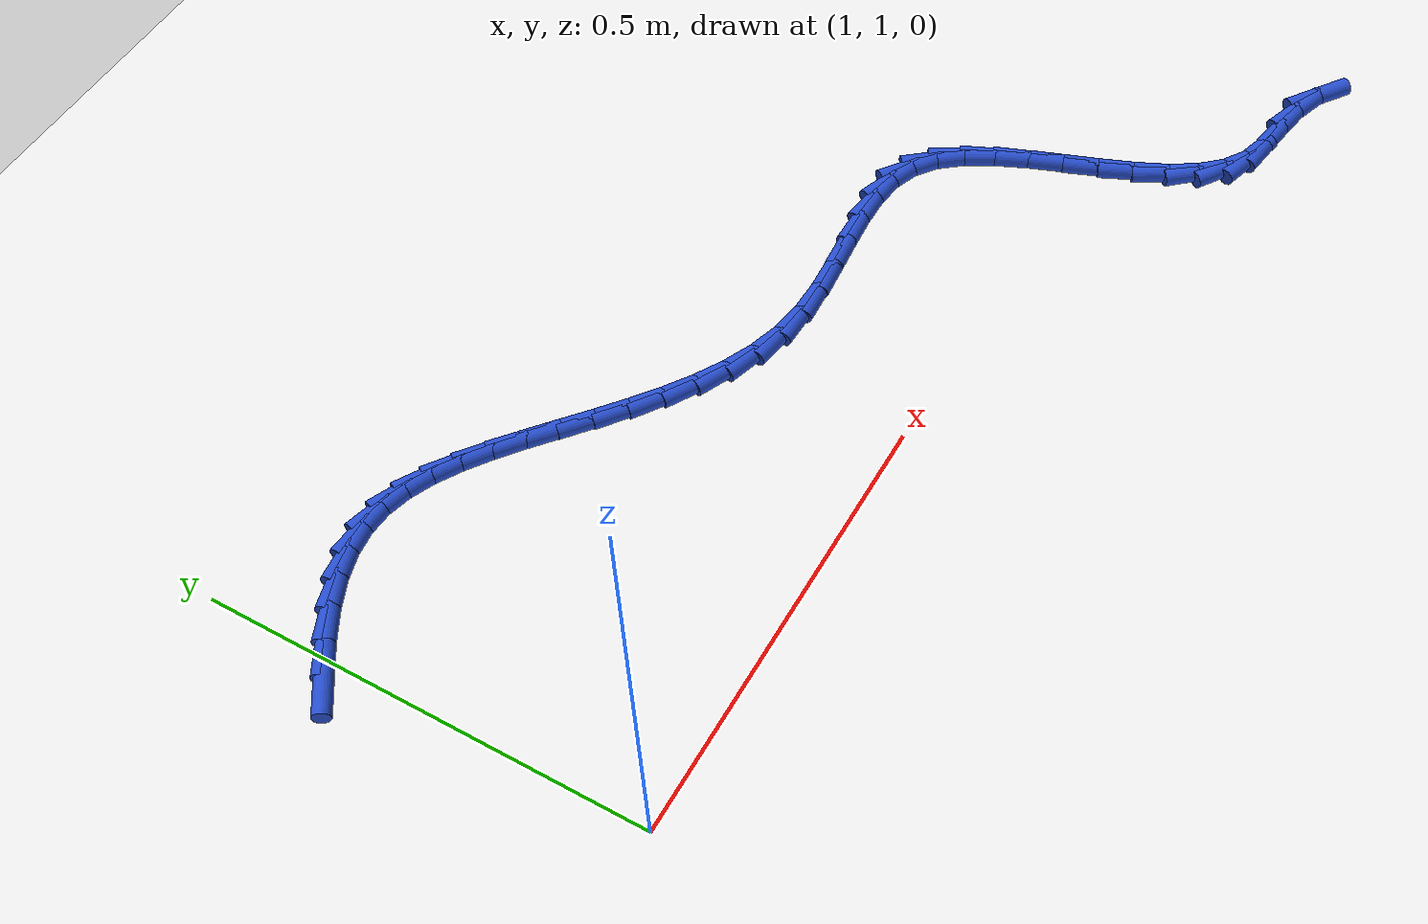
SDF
<sdf version="1.6">
 <world name="default">
  <model name="ground_plane">
   <static>1</static>
   <link name="link">
    <collision name="collision">
     <geometry><plane><normal>0 0 1</normal><size>100 100</size></plane></geometry>
     <surface><friction><ode><mu>100</mu><mu2>50</mu2></ode></friction></surface>
    </collision>
    <visual name="visual">
     <cast_shadows>0</cast_shadows>
     <geometry><plane><normal>0 0 1</normal><size>100 100</size></plane></geometry>
     <material>
      <script><uri>file://media/materials/scripts/gazebo.material</uri><name>Gazebo/WhiteGlow</name></script>
     </material>
    </visual>
   </link>
  </model>
  <model name="line">
   <link name="link_56">
    <pose>0.9785659658392218 1.3477558384027826 0.01 0 1.57 0.5901309701207232</pose>
    <collision name="collision">
     <geometry><cylinder><radius>0.01</radius><length>0.08</length></cylinder></geometry>
    </collision>
    <visual name="visual">
     <material>
      <script><name>Gazebo/Blue</name><uri>file://media/materials/scripts/gazebo.material</uri></script>
     </material>
     <geometry><cylinder><radius>0.01</radius><length>0.08</length></cylinder></geometry>
    </visual>
   </link>
   <link name="link_57">
    <pose>1.0130214481804625 1.3708322373781336 0.01 0 1.57 0.516005729338417</pose>
    <collision name="collision">
     <geometry><cylinder><radius>0.01</radius><length>0.08</length></cylinder></geometry>
    </collision>
    <visual name="visual">
     <material>
      <script><name>Gazebo/Blue</name><uri>file://media/materials/scripts/gazebo.material</uri></script>
     </material>
     <geometry><cylinder><radius>0.01</radius><length>0.08</length></cylinder></geometry>
    </visual>
   </link>
   <link name="link_58">
    <pose>1.04570241990977 1.389371178853719 0.01 0 1.57 0.4158831471761494</pose>
    <collision name="collision">
     <geometry><cylinder><radius>0.01</radius><length>0.08</length></cylinder></geometry>
    </collision>
    <visual name="visual">
     <material>
      <script><name>Gazebo/Blue</name><uri>file://media/materials/scripts/gazebo.material</uri></script>
     </material>
     <geometry><cylinder><radius>0.01</radius><length>0.08</length></cylinder></geometry>
    </visual>
   </link>
   <link name="link_59">
    <pose>1.0768770058433084 1.4031392388105606 0.01 0 1.57 0.2847889965357436</pose>
    <collision name="collision">
     <geometry><cylinder><radius>0.01</radius><length>0.08</length></cylinder></geometry>
    </collision>
    <visual name="visual">
     <material>
      <script><name>Gazebo/Blue</name><uri>file://media/materials/scripts/gazebo.material</uri></script>
     </material>
     <geometry><cylinder><radius>0.01</radius><length>0.08</length></cylinder></geometry>
    </visual>
   </link>
   <link name="link_60">
    <pose>1.1068133307972405 1.4119029932296776 0.01 0 1.57 0.12113302033196666</pose>
    <collision name="collision">
     <geometry><cylinder><radius>0.01</radius><length>0.08</length></cylinder></geometry>
    </collision>
    <visual name="visual">
     <material>
      <script><name>Gazebo/Blue</name><uri>file://media/materials/scripts/gazebo.material</uri></script>
     </material>
     <geometry><cylinder><radius>0.01</radius><length>0.08</length></cylinder></geometry>
    </visual>
   </link>
   <link name="link_61">
    <pose>1.1357795195877296 1.4154290180920903 0.01 0 1.57 -0.0687112376503828</pose>
    <collision name="collision">
     <geometry><cylinder><radius>0.01</radius><length>0.08</length></cylinder></geometry>
    </collision>
    <visual name="visual">
     <material>
      <script><name>Gazebo/Blue</name><uri>file://media/materials/scripts/gazebo.material</uri></script>
     </material>
     <geometry><cylinder><radius>0.01</radius><length>0.08</length></cylinder></geometry>
    </visual>
   </link>
   <link name="link_62">
    <pose>1.1640436970309391 1.4134838893788197 0.01 0 1.57 -0.2630722630723486</pose>
    <collision name="collision">
     <geometry><cylinder><radius>0.01</radius><length>0.08</length></cylinder></geometry>
    </collision>
    <visual name="visual">
     <material>
      <script><name>Gazebo/Blue</name><uri>file://media/materials/scripts/gazebo.material</uri></script>
     </material>
     <geometry><cylinder><radius>0.01</radius><length>0.08</length></cylinder></geometry>
    </visual>
   </link>
   <link name="link_63">
    <pose>1.1918568202912345 1.405993428063927 0.01 0 1.57 -0.423040959716247</pose>
    <collision name="collision">
     <geometry><cylinder><radius>0.01</radius><length>0.08</length></cylinder></geometry>
    </collision>
    <visual name="visual">
     <material>
      <script><name>Gazebo/Blue</name><uri>file://media/materials/scripts/gazebo.material</uri></script>
     </material>
     <geometry><cylinder><radius>0.01</radius><length>0.08</length></cylinder></geometry>
    </visual>
   </link>
   <link name="link_64">
    <pose>1.2193930363021441 1.3935959372255833 0.01 0 1.57 -0.5409516922680203</pose>
    <collision name="collision">
     <geometry><cylinder><radius>0.01</radius><length>0.08</length></cylinder></geometry>
    </collision>
    <visual name="visual">
     <material>
      <script><name>Gazebo/Blue</name><uri>file://media/materials/scripts/gazebo.material</uri></script>
     </material>
     <geometry><cylinder><radius>0.01</radius><length>0.08</length></cylinder></geometry>
    </visual>
   </link>
   <link name="link_65">
    <pose>1.246805018975649 1.3771289010068557 0.01 0 1.57 -0.6226292388037207</pose>
    <collision name="collision">
     <geometry><cylinder><radius>0.01</radius><length>0.08</length></cylinder></geometry>
    </collision>
    <visual name="visual">
     <material>
      <script><name>Gazebo/Blue</name><uri>file://media/materials/scripts/gazebo.material</uri></script>
     </material>
     <geometry><cylinder><radius>0.01</radius><length>0.08</length></cylinder></geometry>
    </visual>
   </link>
   <link name="link_66">
    <pose>1.2742454412244615 1.3574298128199085 0.01 0 1.57 -0.6746618842336378</pose>
    <collision name="collision">
     <geometry><cylinder><radius>0.01</radius><length>0.08</length></cylinder></geometry>
    </collision>
    <visual name="visual">
     <material>
      <script><name>Gazebo/Blue</name><uri>file://media/materials/scripts/gazebo.material</uri></script>
     </material>
     <geometry><cylinder><radius>0.01</radius><length>0.08</length></cylinder></geometry>
    </visual>
   </link>
   <link name="link_67">
    <pose>1.3018669759612935 1.335336166076906 0.01 0 1.57 -0.7021779244512198</pose>
    <collision name="collision">
     <geometry><cylinder><radius>0.01</radius><length>0.08</length></cylinder></geometry>
    </collision>
    <visual name="visual">
     <material>
      <script><name>Gazebo/Blue</name><uri>file://media/materials/scripts/gazebo.material</uri></script>
     </material>
     <geometry><cylinder><radius>0.01</radius><length>0.08</length></cylinder></geometry>
    </visual>
   </link>
   <link name="link_68">
    <pose>1.3298222960988573 1.3116854541900127 0.01 0 1.57 -0.7084563243424707</pose>
    <collision name="collision">
     <geometry><cylinder><radius>0.01</radius><length>0.08</length></cylinder></geometry>
    </collision>
    <visual name="visual">
     <material>
      <script><name>Gazebo/Blue</name><uri>file://media/materials/scripts/gazebo.material</uri></script>
     </material>
     <geometry><cylinder><radius>0.01</radius><length>0.08</length></cylinder></geometry>
    </visual>
   </link>
   <link name="link_69">
    <pose>1.3582640745498646 1.2873151705713926 0.01 0 1.57 -0.6951089414579255</pose>
    <collision name="collision">
     <geometry><cylinder><radius>0.01</radius><length>0.08</length></cylinder></geometry>
    </collision>
    <visual name="visual">
     <material>
      <script><name>Gazebo/Blue</name><uri>file://media/materials/scripts/gazebo.material</uri></script>
     </material>
     <geometry><cylinder><radius>0.01</radius><length>0.08</length></cylinder></geometry>
    </visual>
   </link>
   <link name="link_70">
    <pose>1.3873449842270282 1.2630628086332099 0.01 0 1.57 -0.6623478260778334</pose>
    <collision name="collision">
     <geometry><cylinder><radius>0.01</radius><length>0.08</length></cylinder></geometry>
    </collision>
    <visual name="visual">
     <material>
      <script><name>Gazebo/Blue</name><uri>file://media/materials/scripts/gazebo.material</uri></script>
     </material>
     <geometry><cylinder><radius>0.01</radius><length>0.08</length></cylinder></geometry>
    </visual>
   </link>
   <link name="link_71">
    <pose>1.4172176980430593 1.239765861787629 0.01 0 1.57 -0.6092436188373467</pose>
    <collision name="collision">
     <geometry><cylinder><radius>0.01</radius><length>0.08</length></cylinder></geometry>
    </collision>
    <visual name="visual">
     <material>
      <script><name>Gazebo/Blue</name><uri>file://media/materials/scripts/gazebo.material</uri></script>
     </material>
     <geometry><cylinder><radius>0.01</radius><length>0.08</length></cylinder></geometry>
    </visual>
   </link>
   <link name="link_72">
    <pose>1.4480348889106707 1.2182618234468148 0.01 0 1.57 -0.534060255051369</pose>
    <collision name="collision">
     <geometry><cylinder><radius>0.01</radius><length>0.08</length></cylinder></geometry>
    </collision>
    <visual name="visual">
     <material>
      <script><name>Gazebo/Blue</name><uri>file://media/materials/scripts/gazebo.material</uri></script>
     </material>
     <geometry><cylinder><radius>0.01</radius><length>0.08</length></cylinder></geometry>
    </visual>
   </link>
   <link name="link_73">
    <pose>1.4799492297425731 1.1993881870229313 0.01 0 1.57 -0.43487096651185925</pose>
    <collision name="collision">
     <geometry><cylinder><radius>0.01</radius><length>0.08</length></cylinder></geometry>
    </collision>
    <visual name="visual">
     <material>
      <script><name>Gazebo/Blue</name><uri>file://media/materials/scripts/gazebo.material</uri></script>
     </material>
     <geometry><cylinder><radius>0.01</radius><length>0.08</length></cylinder></geometry>
    </visual>
   </link>
   <link name="link_74">
    <pose>1.5131133934514804 1.1839824459281425 0.01 0 1.57 -0.31072662127793815</pose>
    <collision name="collision">
     <geometry><cylinder><radius>0.01</radius><length>0.08</length></cylinder></geometry>
    </collision>
    <visual name="visual">
     <material>
      <script><name>Gazebo/Blue</name><uri>file://media/materials/scripts/gazebo.material</uri></script>
     </material>
     <geometry><cylinder><radius>0.01</radius><length>0.08</length></cylinder></geometry>
    </visual>
   </link>
   <link name="link_75">
    <pose>1.547680052950104 1.1728820935746134 0.01 0 1.57 -0.1639800397209921</pose>
    <collision name="collision">
     <geometry><cylinder><radius>0.01</radius><length>0.08</length></cylinder></geometry>
    </collision>
    <visual name="visual">
     <material>
      <script><name>Gazebo/Blue</name><uri>file://media/materials/scripts/gazebo.material</uri></script>
     </material>
     <geometry><cylinder><radius>0.01</radius><length>0.08</length></cylinder></geometry>
    </visual>
   </link>
   <link name="link_76">
    <pose>1.5837952432176416 1.166906264718902 0.01 0 1.57 -0.028313933177503966</pose>
    <collision name="collision">
     <geometry><cylinder><radius>0.01</radius><length>0.08</length></cylinder></geometry>
    </collision>
    <visual name="visual">
     <material>
      <script><name>Gazebo/Blue</name><uri>file://media/materials/scripts/gazebo.material</uri></script>
     </material>
     <geometry><cylinder><radius>0.01</radius><length>0.08</length></cylinder></geometry>
    </visual>
   </link>
   <link name="link_77">
    <pose>1.621233258503906 1.1658459639004104 0.01 0 1.57 0.05507332028136856</pose>
    <collision name="collision">
     <geometry><cylinder><radius>0.01</radius><length>0.08</length></cylinder></geometry>
    </collision>
    <visual name="visual">
     <material>
      <script><name>Gazebo/Blue</name><uri>file://media/materials/scripts/gazebo.material</uri></script>
     </material>
     <geometry><cylinder><radius>0.01</radius><length>0.08</length></cylinder></geometry>
    </visual>
   </link>
   <link name="link_78">
    <pose>1.6592069558794407 1.167939418458166 0.01 0 1.57 0.08885550832855044</pose>
    <collision name="collision">
     <geometry><cylinder><radius>0.01</radius><length>0.08</length></cylinder></geometry>
    </collision>
    <visual name="visual">
     <material>
      <script><name>Gazebo/Blue</name><uri>file://media/materials/scripts/gazebo.material</uri></script>
     </material>
     <geometry><cylinder><radius>0.01</radius><length>0.08</length></cylinder></geometry>
    </visual>
   </link>
   <link name="link_79">
    <pose>1.6968825816899873 1.17129594358672 0.01 0 1.57 0.0745367281255707</pose>
    <collision name="collision">
     <geometry><cylinder><radius>0.01</radius><length>0.08</length></cylinder></geometry>
    </collision>
    <visual name="visual">
     <material>
      <script><name>Gazebo/Blue</name><uri>file://media/materials/scripts/gazebo.material</uri></script>
     </material>
     <geometry><cylinder><radius>0.01</radius><length>0.08</length></cylinder></geometry>
    </visual>
   </link>
   <link name="link_80">
    <pose>1.7334263822812863 1.174024854480624 0.01 0 1.57 0.00609080626226796</pose>
    <collision name="collision">
     <geometry><cylinder><radius>0.01</radius><length>0.08</length></cylinder></geometry>
    </collision>
    <visual name="visual">
     <material>
      <script><name>Gazebo/Blue</name><uri>file://media/materials/scripts/gazebo.material</uri></script>
     </material>
     <geometry><cylinder><radius>0.01</radius><length>0.08</length></cylinder></geometry>
    </visual>
   </link>
   <link name="link_81">
    <pose>1.7680046039990778 1.1742354663344279 0.01 0 1.57 -0.13135132176207368</pose>
    <collision name="collision">
     <geometry><cylinder><radius>0.01</radius><length>0.08</length></cylinder></geometry>
    </collision>
    <visual name="visual">
     <material>
      <script><name>Gazebo/Blue</name><uri>file://media/materials/scripts/gazebo.material</uri></script>
     </material>
     <geometry><cylinder><radius>0.01</radius><length>0.08</length></cylinder></geometry>
    </visual>
   </link>
   <link name="link_82">
    <pose>1.7997834931891037 1.170037094342684 0.01 0 1.57 -0.35700536812928224</pose>
    <collision name="collision">
     <geometry><cylinder><radius>0.01</radius><length>0.08</length></cylinder></geometry>
    </collision>
    <visual name="visual">
     <material>
      <script><name>Gazebo/Blue</name><uri>file://media/materials/scripts/gazebo.material</uri></script>
     </material>
     <geometry><cylinder><radius>0.01</radius><length>0.08</length></cylinder></geometry>
    </visual>
   </link>
   <link name="link_83">
    <pose>1.8279292961971039 1.159539053699943 0.01 0 1.57 -0.6544645578361081</pose>
    <collision name="collision">
     <geometry><cylinder><radius>0.01</radius><length>0.08</length></cylinder></geometry>
    </collision>
    <visual name="visual">
     <material>
      <script><name>Gazebo/Blue</name><uri>file://media/materials/scripts/gazebo.material</uri></script>
     </material>
     <geometry><cylinder><radius>0.01</radius><length>0.08</length></cylinder></geometry>
    </visual>
   </link>
   <link name="link_84">
    <pose>1.8517938920310761 1.1412283910152847 0.01 0 1.57 -0.9021077104812166</pose>
    <collision name="collision">
     <geometry><cylinder><radius>0.01</radius><length>0.08</length></cylinder></geometry>
    </collision>
    <visual name="visual">
     <material>
      <script><name>Gazebo/Blue</name><uri>file://media/materials/scripts/gazebo.material</uri></script>
     </material>
     <geometry><cylinder><radius>0.01</radius><length>0.08</length></cylinder></geometry>
    </visual>
   </link>
   <link name="link_85">
    <pose>1.8718415023141106 1.1158555840436455 0.01 0 1.57 -1.064414160382714</pose>
    <collision name="collision">
     <geometry><cylinder><radius>0.01</radius><length>0.08</length></cylinder></geometry>
    </collision>
    <visual name="visual">
     <material>
      <script><name>Gazebo/Blue</name><uri>file://media/materials/scripts/gazebo.material</uri></script>
     </material>
     <geometry><cylinder><radius>0.01</radius><length>0.08</length></cylinder></geometry>
    </visual>
   </link>
   <link name="link_86">
    <pose>1.8889488108343069 1.085010402047899 0.01 0 1.57 -1.1619792918980352</pose>
    <collision name="collision">
     <geometry><cylinder><radius>0.01</radius><length>0.08</length></cylinder></geometry>
    </collision>
    <visual name="visual">
     <material>
      <script><name>Gazebo/Blue</name><uri>file://media/materials/scripts/gazebo.material</uri></script>
     </material>
     <geometry><cylinder><radius>0.01</radius><length>0.08</length></cylinder></geometry>
    </visual>
   </link>
   <link name="link_87">
    <pose>1.9039931776739614 1.050283990436478 0.01 0 1.57 -1.2125563082615824</pose>
    <collision name="collision">
     <geometry><cylinder><radius>0.01</radius><length>0.08</length></cylinder></geometry>
    </collision>
    <visual name="visual">
     <material>
      <script><name>Gazebo/Blue</name><uri>file://media/materials/scripts/gazebo.material</uri></script>
     </material>
     <geometry><cylinder><radius>0.01</radius><length>0.08</length></cylinder></geometry>
    </visual>
   </link>
   <link name="link_88">
    <pose>1.9178519629153687 1.0132674946178177 0.01 0 1.57 -1.2258744730973856</pose>
    <collision name="collision">
     <geometry><cylinder><radius>0.01</radius><length>0.08</length></cylinder></geometry>
    </collision>
    <visual name="visual">
     <material>
      <script><name>Gazebo/Blue</name><uri>file://media/materials/scripts/gazebo.material</uri></script>
     </material>
     <geometry><cylinder><radius>0.01</radius><length>0.08</length></cylinder></geometry>
    </visual>
   </link>
   <link name="link_89">
    <pose>1.9314025266408268 0.97555206000035 0.01 0 1.57 -1.204641989730536</pose>
    <collision name="collision">
     <geometry><cylinder><radius>0.01</radius><length>0.08</length></cylinder></geometry>
    </collision>
    <visual name="visual">
     <material>
      <script><name>Gazebo/Blue</name><uri>file://media/materials/scripts/gazebo.material</uri></script>
     </material>
     <geometry><cylinder><radius>0.01</radius><length>0.08</length></cylinder></geometry>
    </visual>
   </link>
   <link name="link_90">
    <pose>1.945522228932631 0.9387288319925094 0.01 0 1.57 -1.1452030760626033</pose>
    <collision name="collision">
     <geometry><cylinder><radius>0.01</radius><length>0.08</length></cylinder></geometry>
    </collision>
    <visual name="visual">
     <material>
      <script><name>Gazebo/Blue</name><uri>file://media/materials/scripts/gazebo.material</uri></script>
     </material>
     <geometry><cylinder><radius>0.01</radius><length>0.08</length></cylinder></geometry>
    </visual>
   </link>
   <link name="link_91">
    <pose>1.9610884298730782 0.9043889560027298 0.01 0 1.57 -1.0369418861402935</pose>
    <collision name="collision">
     <geometry><cylinder><radius>0.01</radius><length>0.08</length></cylinder></geometry>
    </collision>
    <visual name="visual">
     <material>
      <script><name>Gazebo/Blue</name><uri>file://media/materials/scripts/gazebo.material</uri></script>
     </material>
     <geometry><cylinder><radius>0.01</radius><length>0.08</length></cylinder></geometry>
    </visual>
   </link>
   <link name="link_92">
    <pose>1.9789784895444642 0.8741235774394449 0.01 0 1.57 -0.8620343706873654</pose>
    <collision name="collision">
     <geometry><cylinder><radius>0.01</radius><length>0.08</length></cylinder></geometry>
    </collision>
    <visual name="visual">
     <material>
      <script><name>Gazebo/Blue</name><uri>file://media/materials/scripts/gazebo.material</uri></script>
     </material>
     <geometry><cylinder><radius>0.01</radius><length>0.08</length></cylinder></geometry>
    </visual>
   </link>
   <link name="link_93">
    <pose>2.0000697680290855 0.8495238417110883 0.01 0 1.57 -0.6033298712115167</pose>
    <collision name="collision">
     <geometry><cylinder><radius>0.01</radius><length>0.08</length></cylinder></geometry>
    </collision>
    <visual name="visual">
     <material>
      <script><name>Gazebo/Blue</name><uri>file://media/materials/scripts/gazebo.material</uri></script>
     </material>
     <geometry><cylinder><radius>0.01</radius><length>0.08</length></cylinder></geometry>
    </visual>
   </link>
   <link name="link_94">
    <pose>2.0252396254092386 0.8321808942260938 0.01 0 1.57 -0.3089877488273102</pose>
    <collision name="collision">
     <geometry><cylinder><radius>0.01</radius><length>0.08</length></cylinder></geometry>
    </collision>
    <visual name="visual">
     <material>
      <script><name>Gazebo/Blue</name><uri>file://media/materials/scripts/gazebo.material</uri></script>
     </material>
     <geometry><cylinder><radius>0.01</radius><length>0.08</length></cylinder></geometry>
    </visual>
   </link>
   <link name="link_95">
    <pose>2.054968277249145 0.8226911592914163 0.01 0 1.57 -0.16419532964797048</pose>
    <collision name="collision">
     <geometry><cylinder><radius>0.01</radius><length>0.08</length></cylinder></geometry>
    </collision>
    <visual name="visual">
     <material>
      <script><name>Gazebo/Blue</name><uri>file://media/materials/scripts/gazebo.material</uri></script>
     </material>
     <geometry><cylinder><radius>0.01</radius><length>0.08</length></cylinder></geometry>
    </visual>
   </link>
   <link name="link_96">
    <pose>2.087968224767038 0.8172234972383957 0.01 0 1.57 -0.18649290256003379</pose>
    <collision name="collision">
     <geometry><cylinder><radius>0.01</radius><length>0.08</length></cylinder></geometry>
    </collision>
    <visual name="visual">
     <material>
      <script><name>Gazebo/Blue</name><uri>file://media/materials/scripts/gazebo.material</uri></script>
     </material>
     <geometry><cylinder><radius>0.01</radius><length>0.08</length></cylinder></geometry>
    </visual>
   </link>
   <link name="link_97">
    <pose>2.1224603190014153 0.8107153405778412 0.01 0 1.57 -0.3532323385182785</pose>
    <collision name="collision">
     <geometry><cylinder><radius>0.01</radius><length>0.08</length></cylinder></geometry>
    </collision>
    <visual name="visual">
     <material>
      <script><name>Gazebo/Blue</name><uri>file://media/materials/scripts/gazebo.material</uri></script>
     </material>
     <geometry><cylinder><radius>0.01</radius><length>0.08</length></cylinder></geometry>
    </visual>
   </link>
   <link name="link_98">
    <pose>2.1566653910315683 0.7981040718290728 0.01 0 1.57 -0.6369542403131211</pose>
    <collision name="collision">
     <geometry><cylinder><radius>0.01</radius><length>0.08</length></cylinder></geometry>
    </collision>
    <visual name="visual">
     <material>
      <script><name>Gazebo/Blue</name><uri>file://media/materials/scripts/gazebo.material</uri></script>
     </material>
     <geometry><cylinder><radius>0.01</radius><length>0.08</length></cylinder></geometry>
    </visual>
   </link>
  </model>
 </world>
</sdf>
